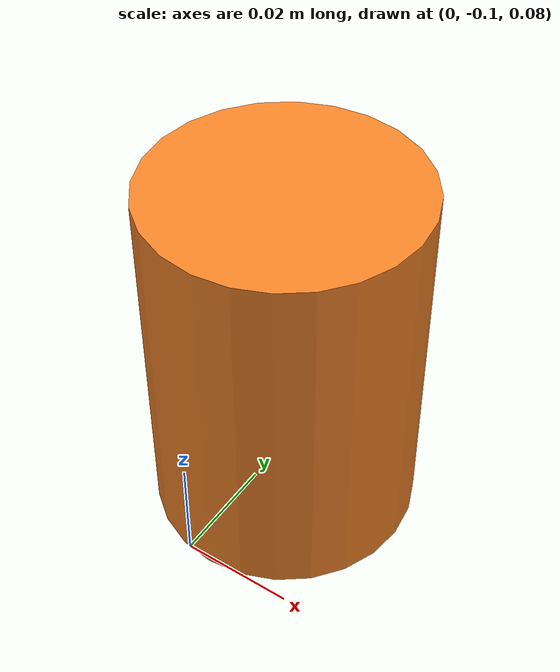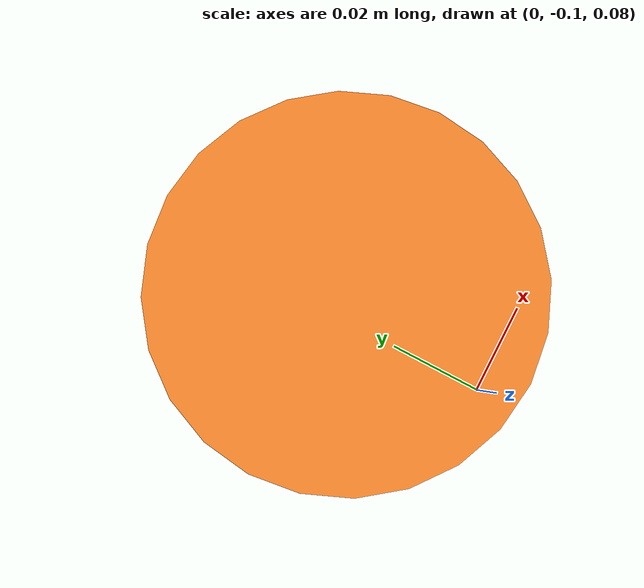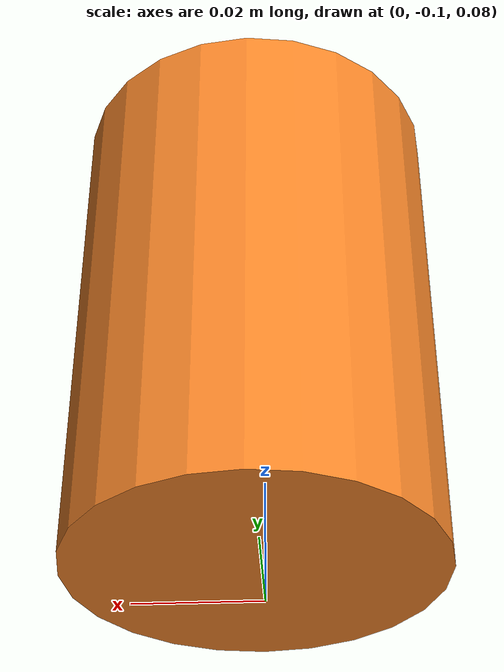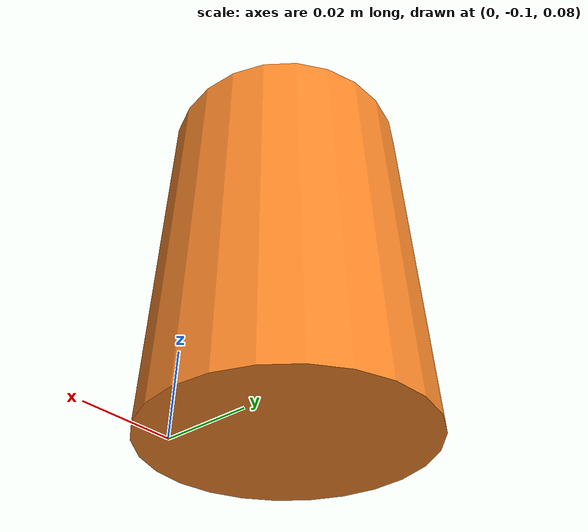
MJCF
<mujoco model="tactile_test_cylinder">
  <compiler angle="radian"/>
  <asset>
    <material name="cylinder_material" rgba="0.96 0.52 0.16 1" metallic="0.04" roughness="0.36"/>
  </asset>
  <worldbody>
    <body name="cylinder_object" pos="0 -0.070 0.105" gravcomp="1">
      <freejoint name="cylinder_object_free"/>
      <geom name="cylinder_object_geom" type="cylinder" size="0.025 0.035" mass="0.500"
            contype="1" conaffinity="1" material="cylinder_material"/>
    </body>
  </worldbody>
</mujoco>
